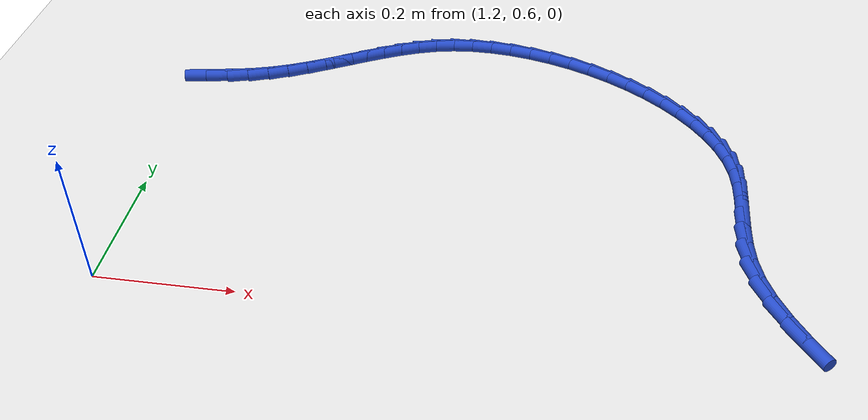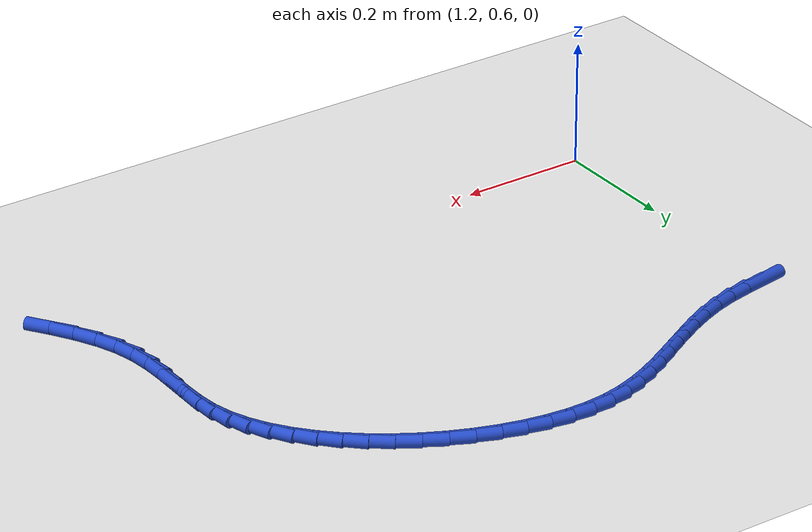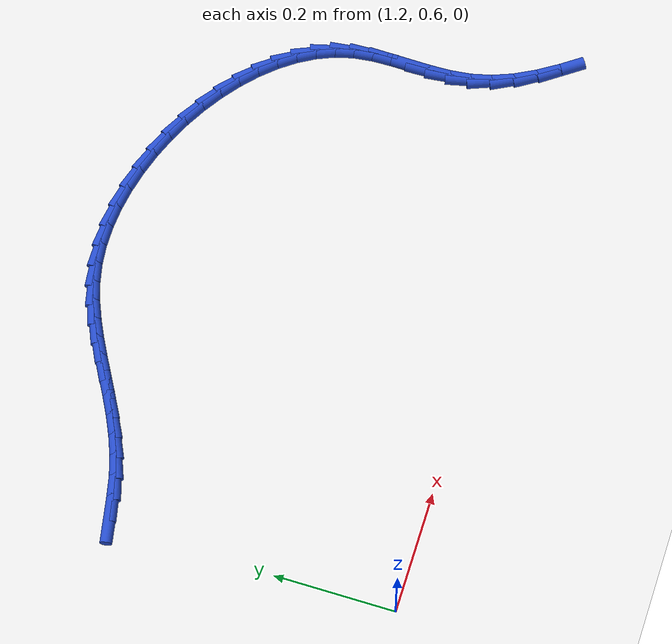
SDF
<sdf version="1.6">
 <world name="default">
  <model name="ground_plane">
   <static>1</static>
   <link name="link">
    <collision name="collision">
     <geometry><plane><normal>0 0 1</normal><size>100 100</size></plane></geometry>
     <surface><friction><ode><mu>100</mu><mu2>50</mu2></ode></friction></surface>
    </collision>
    <visual name="visual">
     <cast_shadows>0</cast_shadows>
     <geometry><plane><normal>0 0 1</normal><size>100 100</size></plane></geometry>
     <material>
      <script><uri>file://media/materials/scripts/gazebo.material</uri><name>Gazebo/WhiteGlow</name></script>
     </material>
    </visual>
   </link>
  </model>
  <model name="line">
   <link name="link_61">
    <pose>1.2099597006858465 1.072004608873415 0.01 0 1.57 0.166982682259189</pose>
    <collision name="collision">
     <geometry><cylinder><radius>0.01</radius><length>0.08</length></cylinder></geometry>
    </collision>
    <visual name="visual">
     <material>
      <script><name>Gazebo/Blue</name><uri>file://media/materials/scripts/gazebo.material</uri></script>
     </material>
     <geometry><cylinder><radius>0.01</radius><length>0.08</length></cylinder></geometry>
    </visual>
   </link>
   <link name="link_62">
    <pose>1.2447118597622349 1.0778621615510502 0.01 0 1.57 0.19516450393243365</pose>
    <collision name="collision">
     <geometry><cylinder><radius>0.01</radius><length>0.08</length></cylinder></geometry>
    </collision>
    <visual name="visual">
     <material>
      <script><name>Gazebo/Blue</name><uri>file://media/materials/scripts/gazebo.material</uri></script>
     </material>
     <geometry><cylinder><radius>0.01</radius><length>0.08</length></cylinder></geometry>
    </visual>
   </link>
   <link name="link_63">
    <pose>1.2791663748809057 1.0846731553507563 0.01 0 1.57 0.28268416763427084</pose>
    <collision name="collision">
     <geometry><cylinder><radius>0.01</radius><length>0.08</length></cylinder></geometry>
    </collision>
    <visual name="visual">
     <material>
      <script><name>Gazebo/Blue</name><uri>file://media/materials/scripts/gazebo.material</uri></script>
     </material>
     <geometry><cylinder><radius>0.01</radius><length>0.08</length></cylinder></geometry>
    </visual>
   </link>
   <link name="link_64">
    <pose>1.3119575154048235 1.0941977583093248 0.01 0 1.57 0.36412488224008605</pose>
    <collision name="collision">
     <geometry><cylinder><radius>0.01</radius><length>0.08</length></cylinder></geometry>
    </collision>
    <visual name="visual">
     <material>
      <script><name>Gazebo/Blue</name><uri>file://media/materials/scripts/gazebo.material</uri></script>
     </material>
     <geometry><cylinder><radius>0.01</radius><length>0.08</length></cylinder></geometry>
    </visual>
   </link>
   <link name="link_65">
    <pose>1.3432048771643088 1.106106736993317 0.01 0 1.57 0.42803171538979967</pose>
    <collision name="collision">
     <geometry><cylinder><radius>0.01</radius><length>0.08</length></cylinder></geometry>
    </collision>
    <visual name="visual">
     <material>
      <script><name>Gazebo/Blue</name><uri>file://media/materials/scripts/gazebo.material</uri></script>
     </material>
     <geometry><cylinder><radius>0.01</radius><length>0.08</length></cylinder></geometry>
    </visual>
   </link>
   <link name="link_66">
    <pose>1.3732199935374312 1.1198008603605032 0.01 0 1.57 0.4727575275970164</pose>
    <collision name="collision">
     <geometry><cylinder><radius>0.01</radius><length>0.08</length></cylinder></geometry>
    </collision>
    <visual name="visual">
     <material>
      <script><name>Gazebo/Blue</name><uri>file://media/materials/scripts/gazebo.material</uri></script>
     </material>
     <geometry><cylinder><radius>0.01</radius><length>0.08</length></cylinder></geometry>
    </visual>
   </link>
   <link name="link_67">
    <pose>1.402314397902258 1.134680897368652 0.01 0 1.57 0.49743250000228273</pose>
    <collision name="collision">
     <geometry><cylinder><radius>0.01</radius><length>0.08</length></cylinder></geometry>
    </collision>
    <visual name="visual">
     <material>
      <script><name>Gazebo/Blue</name><uri>file://media/materials/scripts/gazebo.material</uri></script>
     </material>
     <geometry><cylinder><radius>0.01</radius><length>0.08</length></cylinder></geometry>
    </visual>
   </link>
   <link name="link_68">
    <pose>1.4307996236368603 1.150147616975534 0.01 0 1.57 0.5015076541230402</pose>
    <collision name="collision">
     <geometry><cylinder><radius>0.01</radius><length>0.08</length></cylinder></geometry>
    </collision>
    <visual name="visual">
     <material>
      <script><name>Gazebo/Blue</name><uri>file://media/materials/scripts/gazebo.material</uri></script>
     </material>
     <geometry><cylinder><radius>0.01</radius><length>0.08</length></cylinder></geometry>
    </visual>
   </link>
   <link name="link_69">
    <pose>1.458987204119306 1.1656017881389185 0.01 0 1.57 0.4844644190866808</pose>
    <collision name="collision">
     <geometry><cylinder><radius>0.01</radius><length>0.08</length></cylinder></geometry>
    </collision>
    <visual name="visual">
     <material>
      <script><name>Gazebo/Blue</name><uri>file://media/materials/scripts/gazebo.material</uri></script>
     </material>
     <geometry><cylinder><radius>0.01</radius><length>0.08</length></cylinder></geometry>
    </visual>
   </link>
   <link name="link_70">
    <pose>1.4871886727276653 1.1804441798165752 0.01 0 1.57 0.4457655946768319</pose>
    <collision name="collision">
     <geometry><cylinder><radius>0.01</radius><length>0.08</length></cylinder></geometry>
    </collision>
    <visual name="visual">
     <material>
      <script><name>Gazebo/Blue</name><uri>file://media/materials/scripts/gazebo.material</uri></script>
     </material>
     <geometry><cylinder><radius>0.01</radius><length>0.08</length></cylinder></geometry>
    </visual>
   </link>
   <link name="link_71">
    <pose>1.515715562840006 1.1940755609662739 0.01 0 1.57 0.38509740471232556</pose>
    <collision name="collision">
     <geometry><cylinder><radius>0.01</radius><length>0.08</length></cylinder></geometry>
    </collision>
    <visual name="visual">
     <material>
      <script><name>Gazebo/Blue</name><uri>file://media/materials/scripts/gazebo.material</uri></script>
     </material>
     <geometry><cylinder><radius>0.01</radius><length>0.08</length></cylinder></geometry>
    </visual>
   </link>
   <link name="link_72">
    <pose>1.5448794078343984 1.2058967005457841 0.01 0 1.57 0.30293215008612484</pose>
    <collision name="collision">
     <geometry><cylinder><radius>0.01</radius><length>0.08</length></cylinder></geometry>
    </collision>
    <visual name="visual">
     <material>
      <script><name>Gazebo/Blue</name><uri>file://media/materials/scripts/gazebo.material</uri></script>
     </material>
     <geometry><cylinder><radius>0.01</radius><length>0.08</length></cylinder></geometry>
    </visual>
   </link>
   <link name="link_73">
    <pose>1.5749917410889116 1.215308367512876 0.01 0 1.57 0.20134688348877558</pose>
    <collision name="collision">
     <geometry><cylinder><radius>0.01</radius><length>0.08</length></cylinder></geometry>
    </collision>
    <visual name="visual">
     <material>
      <script><name>Gazebo/Blue</name><uri>file://media/materials/scripts/gazebo.material</uri></script>
     </material>
     <geometry><cylinder><radius>0.01</radius><length>0.08</length></cylinder></geometry>
    </visual>
   </link>
   <link name="link_74">
    <pose>1.6063637032123124 1.2217117817769947 0.01 0 1.57 0.09098231840236612</pose>
    <collision name="collision">
     <geometry><cylinder><radius>0.01</radius><length>0.08</length></cylinder></geometry>
    </collision>
    <visual name="visual">
     <material>
      <script><name>Gazebo/Blue</name><uri>file://media/materials/scripts/gazebo.material</uri></script>
     </material>
     <geometry><cylinder><radius>0.01</radius><length>0.08</length></cylinder></geometry>
    </visual>
   </link>
   <link name="link_75">
    <pose>1.6391377018870636 1.2247018912079866 0.01 0 1.57 -0.009837906757912665</pose>
    <collision name="collision">
     <geometry><cylinder><radius>0.01</radius><length>0.08</length></cylinder></geometry>
    </collision>
    <visual name="visual">
     <material>
      <script><name>Gazebo/Blue</name><uri>file://media/materials/scripts/gazebo.material</uri></script>
     </material>
     <geometry><cylinder><radius>0.01</radius><length>0.08</length></cylinder></geometry>
    </visual>
   </link>
   <link name="link_76">
    <pose>1.6730251363228006 1.2243684990319519 0.01 0 1.57 -0.10037642166458029</pose>
    <collision name="collision">
     <geometry><cylinder><radius>0.01</radius><length>0.08</length></cylinder></geometry>
    </collision>
    <visual name="visual">
     <material>
      <script><name>Gazebo/Blue</name><uri>file://media/materials/scripts/gazebo.material</uri></script>
     </material>
     <geometry><cylinder><radius>0.01</radius><length>0.08</length></cylinder></geometry>
    </visual>
   </link>
   <link name="link_77">
    <pose>1.707669574315302 1.2208792880077244 0.01 0 1.57 -0.1827667809236322</pose>
    <collision name="collision">
     <geometry><cylinder><radius>0.01</radius><length>0.08</length></cylinder></geometry>
    </collision>
    <visual name="visual">
     <material>
      <script><name>Gazebo/Blue</name><uri>file://media/materials/scripts/gazebo.material</uri></script>
     </material>
     <geometry><cylinder><radius>0.01</radius><length>0.08</length></cylinder></geometry>
    </visual>
   </link>
   <link name="link_78">
    <pose>1.7427145836603462 1.214401940894138 0.01 0 1.57 -0.2590237906922626</pose>
    <collision name="collision">
     <geometry><cylinder><radius>0.01</radius><length>0.08</length></cylinder></geometry>
    </collision>
    <visual name="visual">
     <material>
      <script><name>Gazebo/Blue</name><uri>file://media/materials/scripts/gazebo.material</uri></script>
     </material>
     <geometry><cylinder><radius>0.01</radius><length>0.08</length></cylinder></geometry>
    </visual>
   </link>
   <link name="link_79">
    <pose>1.7778037321537112 1.205104140450028 0.01 0 1.57 -0.3309939022233106</pose>
    <collision name="collision">
     <geometry><cylinder><radius>0.01</radius><length>0.08</length></cylinder></geometry>
    </collision>
    <visual name="visual">
     <material>
      <script><name>Gazebo/Blue</name><uri>file://media/materials/scripts/gazebo.material</uri></script>
     </material>
     <geometry><cylinder><radius>0.01</radius><length>0.08</length></cylinder></geometry>
    </visual>
   </link>
   <link name="link_80">
    <pose>1.8125805875911754 1.1931535694342275 0.01 0 1.57 -0.40037234899574076</pose>
    <collision name="collision">
     <geometry><cylinder><radius>0.01</radius><length>0.08</length></cylinder></geometry>
    </collision>
    <visual name="visual">
     <material>
      <script><name>Gazebo/Blue</name><uri>file://media/materials/scripts/gazebo.material</uri></script>
     </material>
     <geometry><cylinder><radius>0.01</radius><length>0.08</length></cylinder></geometry>
    </visual>
   </link>
   <link name="link_81">
    <pose>1.8466887177685185 1.1787179106055712 0.01 0 1.57 -0.46875079803469516</pose>
    <collision name="collision">
     <geometry><cylinder><radius>0.01</radius><length>0.08</length></cylinder></geometry>
    </collision>
    <visual name="visual">
     <material>
      <script><name>Gazebo/Blue</name><uri>file://media/materials/scripts/gazebo.material</uri></script>
     </material>
     <geometry><cylinder><radius>0.01</radius><length>0.08</length></cylinder></geometry>
    </visual>
   </link>
   <link name="link_82">
    <pose>1.8797716904815176 1.161964846722894 0.01 0 1.57 -0.5376770519582957</pose>
    <collision name="collision">
     <geometry><cylinder><radius>0.01</radius><length>0.08</length></cylinder></geometry>
    </collision>
    <visual name="visual">
     <material>
      <script><name>Gazebo/Blue</name><uri>file://media/materials/scripts/gazebo.material</uri></script>
     </material>
     <geometry><cylinder><radius>0.01</radius><length>0.08</length></cylinder></geometry>
    </visual>
   </link>
   <link name="link_83">
    <pose>1.9114730735259509 1.1430620605450286 0.01 0 1.57 -0.6087178557072547</pose>
    <collision name="collision">
     <geometry><cylinder><radius>0.01</radius><length>0.08</length></cylinder></geometry>
    </collision>
    <visual name="visual">
     <material>
      <script><name>Gazebo/Blue</name><uri>file://media/materials/scripts/gazebo.material</uri></script>
     </material>
     <geometry><cylinder><radius>0.01</radius><length>0.08</length></cylinder></geometry>
    </visual>
   </link>
   <link name="link_84">
    <pose>1.9414364346975976 1.122177234830811 0.01 0 1.57 -0.6835191688639457</pose>
    <collision name="collision">
     <geometry><cylinder><radius>0.01</radius><length>0.08</length></cylinder></geometry>
    </collision>
    <visual name="visual">
     <material>
      <script><name>Gazebo/Blue</name><uri>file://media/materials/scripts/gazebo.material</uri></script>
     </material>
     <geometry><cylinder><radius>0.01</radius><length>0.08</length></cylinder></geometry>
    </visual>
   </link>
   <link name="link_85">
    <pose>1.9693053417922368 1.0994780523390741 0.01 0 1.57 -0.7638564646508599</pose>
    <collision name="collision">
     <geometry><cylinder><radius>0.01</radius><length>0.08</length></cylinder></geometry>
    </collision>
    <visual name="visual">
     <material>
      <script><name>Gazebo/Blue</name><uri>file://media/materials/scripts/gazebo.material</uri></script>
     </material>
     <geometry><cylinder><radius>0.01</radius><length>0.08</length></cylinder></geometry>
    </visual>
   </link>
   <link name="link_86">
    <pose>1.9947233626056453 1.075132195828653 0.01 0 1.57 -0.8516602370693729</pose>
    <collision name="collision">
     <geometry><cylinder><radius>0.01</radius><length>0.08</length></cylinder></geometry>
    </collision>
    <visual name="visual">
     <material>
      <script><name>Gazebo/Blue</name><uri>file://media/materials/scripts/gazebo.material</uri></script>
     </material>
     <geometry><cylinder><radius>0.01</radius><length>0.08</length></cylinder></geometry>
    </visual>
   </link>
   <link name="link_87">
    <pose>2.0173340649336025 1.0493073480583819 0.01 0 1.57 -0.9489873049710202</pose>
    <collision name="collision">
     <geometry><cylinder><radius>0.01</radius><length>0.08</length></cylinder></geometry>
    </collision>
    <visual name="visual">
     <material>
      <script><name>Gazebo/Blue</name><uri>file://media/materials/scripts/gazebo.material</uri></script>
     </material>
     <geometry><cylinder><radius>0.01</radius><length>0.08</length></cylinder></geometry>
    </visual>
   </link>
   <link name="link_88">
    <pose>2.036781016571887 1.0221711917870946 0.01 0 1.57 -1.057886133546718</pose>
    <collision name="collision">
     <geometry><cylinder><radius>0.01</radius><length>0.08</length></cylinder></geometry>
    </collision>
    <visual name="visual">
     <material>
      <script><name>Gazebo/Blue</name><uri>file://media/materials/scripts/gazebo.material</uri></script>
     </material>
     <geometry><cylinder><radius>0.01</radius><length>0.08</length></cylinder></geometry>
    </visual>
   </link>
   <link name="link_89">
    <pose>2.052707785316277 0.9938914097736256 0.01 0 1.57 -1.180081775480463</pose>
    <collision name="collision">
     <geometry><cylinder><radius>0.01</radius><length>0.08</length></cylinder></geometry>
    </collision>
    <visual name="visual">
     <material>
      <script><name>Gazebo/Blue</name><uri>file://media/materials/scripts/gazebo.material</uri></script>
     </material>
     <geometry><cylinder><radius>0.01</radius><length>0.08</length></cylinder></geometry>
    </visual>
   </link>
   <link name="link_90">
    <pose>2.064757938962551 0.9646356847768093 0.01 0 1.57 -1.3162960040517326</pose>
    <collision name="collision">
     <geometry><cylinder><radius>0.01</radius><length>0.08</length></cylinder></geometry>
    </collision>
    <visual name="visual">
     <material>
      <script><name>Gazebo/Blue</name><uri>file://media/materials/scripts/gazebo.material</uri></script>
     </material>
     <geometry><cylinder><radius>0.01</radius><length>0.08</length></cylinder></geometry>
    </visual>
   </link>
   <link name="link_91">
    <pose>2.0725788843088875 0.9345714541108952 0.01 0 1.57 -1.4486423006202895</pose>
    <collision name="collision">
     <geometry><cylinder><radius>0.01</radius><length>0.08</length></cylinder></geometry>
    </collision>
    <visual name="visual">
     <material>
      <script><name>Gazebo/Blue</name><uri>file://media/materials/scripts/gazebo.material</uri></script>
     </material>
     <geometry><cylinder><radius>0.01</radius><length>0.08</length></cylinder></geometry>
    </visual>
   </link>
   <link name="link_92">
    <pose>2.0763526241098353 0.9038319759808353 0.01 0 1.57 -1.5393300726159378</pose>
    <collision name="collision">
     <geometry><cylinder><radius>0.01</radius><length>0.08</length></cylinder></geometry>
    </collision>
    <visual name="visual">
     <material>
      <script><name>Gazebo/Blue</name><uri>file://media/materials/scripts/gazebo.material</uri></script>
     </material>
     <geometry><cylinder><radius>0.01</radius><length>0.08</length></cylinder></geometry>
    </visual>
   </link>
   <link name="link_93">
    <pose>2.077339429659537 0.8724815700636603 0.01 0 1.57 1.5579402582850572</pose>
    <collision name="collision">
     <geometry><cylinder><radius>0.01</radius><length>0.08</length></cylinder></geometry>
    </collision>
    <visual name="visual">
     <material>
      <script><name>Gazebo/Blue</name><uri>file://media/materials/scripts/gazebo.material</uri></script>
     </material>
     <geometry><cylinder><radius>0.01</radius><length>0.08</length></cylinder></geometry>
    </visual>
   </link>
   <link name="link_94">
    <pose>2.076929230290752 0.840576266418382 0.01 0 1.57 1.557919839744239</pose>
    <collision name="collision">
     <geometry><cylinder><radius>0.01</radius><length>0.08</length></cylinder></geometry>
    </collision>
    <visual name="visual">
     <material>
      <script><name>Gazebo/Blue</name><uri>file://media/materials/scripts/gazebo.material</uri></script>
     </material>
     <geometry><cylinder><radius>0.01</radius><length>0.08</length></cylinder></geometry>
    </visual>
   </link>
   <link name="link_95">
    <pose>2.0765119553362394 0.8081720951040104 0.01 0 1.57 -1.5414085427407684</pose>
    <collision name="collision">
     <geometry><cylinder><radius>0.01</radius><length>0.08</length></cylinder></geometry>
    </collision>
    <visual name="visual">
     <material>
      <script><name>Gazebo/Blue</name><uri>file://media/materials/scripts/gazebo.material</uri></script>
     </material>
     <geometry><cylinder><radius>0.01</radius><length>0.08</length></cylinder></geometry>
    </visual>
   </link>
   <link name="link_96">
    <pose>2.07747753412876 0.7753250861795564 0.01 0 1.57 -1.4587805121718898</pose>
    <collision name="collision">
     <geometry><cylinder><radius>0.01</radius><length>0.08</length></cylinder></geometry>
    </collision>
    <visual name="visual">
     <material>
      <script><name>Gazebo/Blue</name><uri>file://media/materials/scripts/gazebo.material</uri></script>
     </material>
     <geometry><cylinder><radius>0.01</radius><length>0.08</length></cylinder></geometry>
    </visual>
   </link>
   <link name="link_97">
    <pose>2.08121589600107 0.7420912697040312 0.01 0 1.57 -1.3396134574195415</pose>
    <collision name="collision">
     <geometry><cylinder><radius>0.01</radius><length>0.08</length></cylinder></geometry>
    </collision>
    <visual name="visual">
     <material>
      <script><name>Gazebo/Blue</name><uri>file://media/materials/scripts/gazebo.material</uri></script>
     </material>
     <geometry><cylinder><radius>0.01</radius><length>0.08</length></cylinder></geometry>
    </visual>
   </link>
   <link name="link_98">
    <pose>2.0891167103810546 0.7085266896530329 0.01 0 1.57 -1.2050019818059323</pose>
    <collision name="collision">
     <geometry><cylinder><radius>0.01</radius><length>0.08</length></cylinder></geometry>
    </collision>
    <visual name="visual">
     <material>
      <script><name>Gazebo/Blue</name><uri>file://media/materials/scripts/gazebo.material</uri></script>
     </material>
     <geometry><cylinder><radius>0.01</radius><length>0.08</length></cylinder></geometry>
    </visual>
   </link>
   <link name="link_99">
    <pose>2.1020679786763123 0.6747142517782849 0.01 0 1.57 -1.0978676929156497</pose>
    <collision name="collision">
     <geometry><cylinder><radius>0.01</radius><length>0.08</length></cylinder></geometry>
    </collision>
    <visual name="visual">
     <material>
      <script><name>Gazebo/Blue</name><uri>file://media/materials/scripts/gazebo.material</uri></script>
     </material>
     <geometry><cylinder><radius>0.01</radius><length>0.08</length></cylinder></geometry>
    </visual>
   </link>
   <link name="link_100">
    <pose>2.119410310844725 0.6408197167894137 0.01 0 1.57 -1.019576892006472</pose>
    <collision name="collision">
     <geometry><cylinder><radius>0.01</radius><length>0.08</length></cylinder></geometry>
    </collision>
    <visual name="visual">
     <material>
      <script><name>Gazebo/Blue</name><uri>file://media/materials/scripts/gazebo.material</uri></script>
     </material>
     <geometry><cylinder><radius>0.01</radius><length>0.08</length></cylinder></geometry>
    </visual>
   </link>
   <link name="link_101">
    <pose>2.140186913214583 0.6070247698508542 0.01 0 1.57 -0.9641974005728174</pose>
    <collision name="collision">
     <geometry><cylinder><radius>0.01</radius><length>0.08</length></cylinder></geometry>
    </collision>
    <visual name="visual">
     <material>
      <script><name>Gazebo/Blue</name><uri>file://media/materials/scripts/gazebo.material</uri></script>
     </material>
     <geometry><cylinder><radius>0.01</radius><length>0.08</length></cylinder></geometry>
    </visual>
   </link>
  </model>
 </world>
</sdf>
